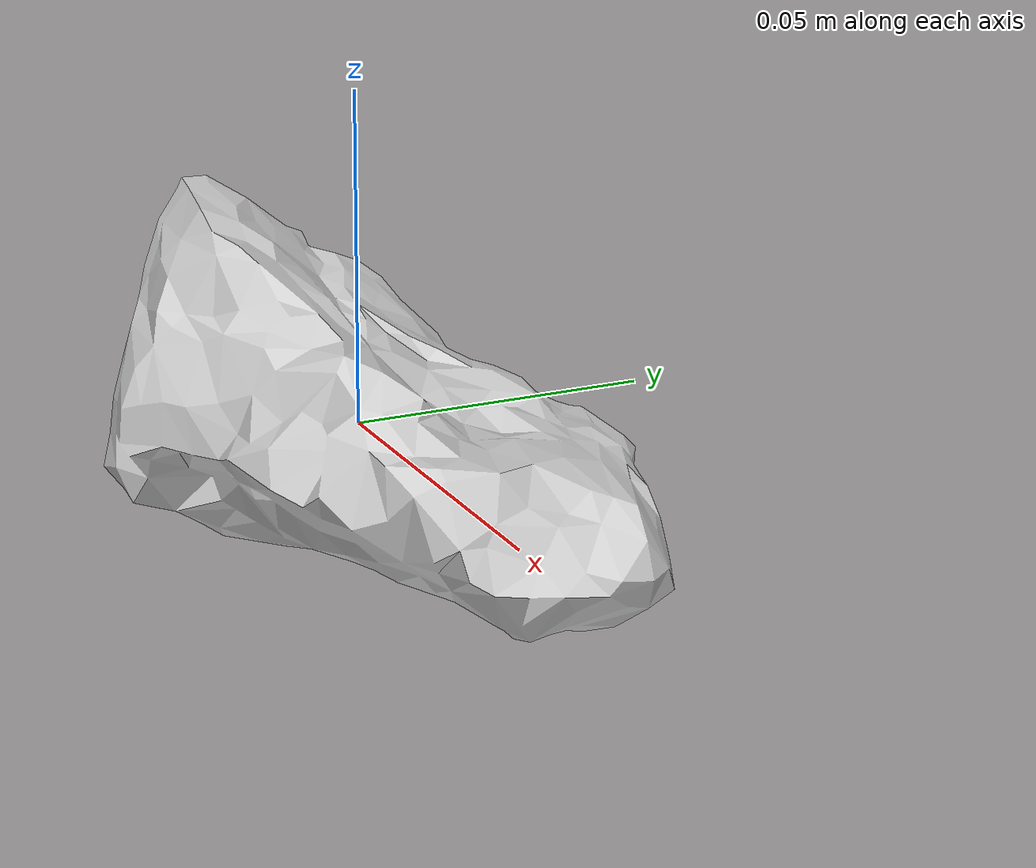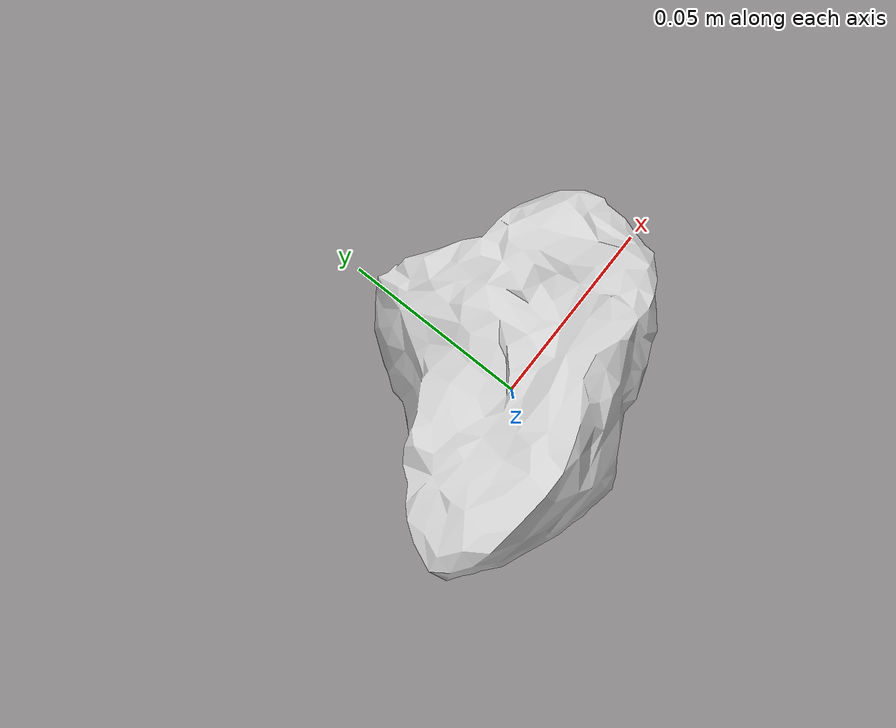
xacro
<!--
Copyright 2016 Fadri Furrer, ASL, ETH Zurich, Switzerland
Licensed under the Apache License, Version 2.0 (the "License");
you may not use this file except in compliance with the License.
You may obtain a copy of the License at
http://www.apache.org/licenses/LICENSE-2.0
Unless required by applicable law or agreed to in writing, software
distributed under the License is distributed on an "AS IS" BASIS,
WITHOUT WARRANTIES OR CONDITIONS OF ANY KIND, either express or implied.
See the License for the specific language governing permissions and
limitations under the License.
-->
<?xml version="1.0"?>

<robot name="stone_3" xmlns:xacro="http://ros.org/wiki/xacro">
  <xacro:property name="mesh_file" value="package://urdf_models/models/stone_3/mesh/stone_3.stl" />
  <xacro:property name="mass" value="1.0" />
  <link name="base_link"></link>

  <joint name="base_joint" type="fixed">
    <origin xyz="0 0 0" rpy="0 0 0" />
    <parent link="base_link" />
    <child link="base_link_inertia" />
  </joint>

  <link name="base_link_inertia">
      <inertial>
        <mass value="${mass}" />  <!-- [kg] -->
        <origin xyz=" 0.000056e-1 0.000026e-1 0.000159e-1" />
       <inertia ixx="0.005936e-02"  ixy="-0.001673e-02"  ixz="0.00102e-02"
                                    iyy="0.008784e-02"  iyz="0.001319e-02"
                                                        izz="0.010867e-02" />
      </inertial>

      <visual>
        <origin xyz="0 0 0" rpy="0 0 0" />
          <geometry>
            <mesh filename="${mesh_file}" scale="1 1 1" />
          </geometry>
		      <material name="Gray">
	 	        <color rgba="0.8 0.8 0.8 1"/>
		      </material>
      </visual>

      <collision>
        <origin xyz="0 0 0" rpy="0 0 0" />
        <geometry>
          <mesh filename="${mesh_file}" scale="1 1 1" />
        </geometry>
      </collision>
  </link>

  <gazebo reference="base_link">
    <mu1 value="100"/>
    <mu2 value="100"/>
    <kp  value="5000000.0" />
    <kd  value="1.0" />
    <fdir1 value="1 0 0"/>
    <collision>
      <surface>
        <bounce>
          <restitution_coefficient> 0.1 </restitution_coefficient>
          <threshold>0.</threshold>
        </bounce>
  	    <contact>
  	      <ode>
  	        <max_vel>10.0</max_vel>
  	        <min_depth>0.001</min_depth>
  	      </ode>
  	    </contact>
      </surface>
    </collision>
    <material name="Gray">
      <color rgba="0.8 0.8 0.8 1"/>
    </material>
    <turnGravityOff>false</turnGravityOff>
  </gazebo>

</robot>
